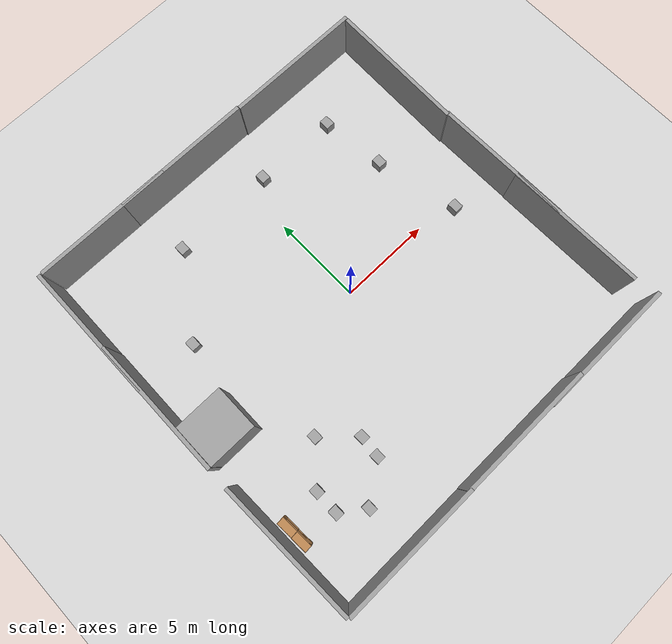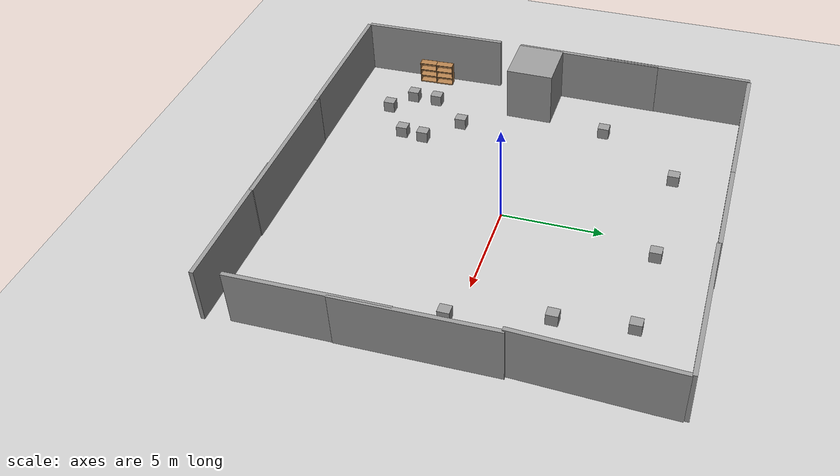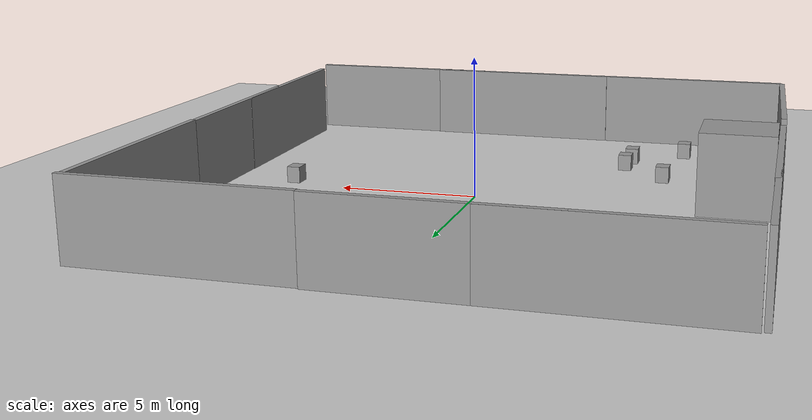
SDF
<sdf version="1.6">
 <world name="default">
  <light name="sun" type="directional">
   <pose>0 0 10 0 -0 0</pose>
   <diffuse>0.8 0.8 0.8 1</diffuse>
   <specular>0.2 0.2 0.2 1</specular>
   <attenuation>
    <range>1000</range>
    <constant>0.9</constant>
    <linear>0.01</linear>
    <quadratic>0.001</quadratic>
   </attenuation>
   <direction>-0.5 0.1 -0.9</direction>
  </light>
  <model name="ground_plane">
   <static>1</static>
   <link name="link">
    <collision name="collision">
     <geometry><plane><normal>0 0 1</normal><size>100 100</size></plane></geometry>
     <surface><friction><ode><mu>100</mu><mu2>50</mu2></ode></friction></surface>
    </collision>
    <visual name="visual">
     <cast_shadows>0</cast_shadows>
     <geometry><plane><normal>0 0 1</normal><size>100 100</size></plane></geometry>
     <material>
      <script><uri>file://media/materials/scripts/gazebo.material</uri><name>Gazebo/Grey</name></script>
     </material>
    </visual>
   </link>
  </model>
  <gravity>0 0 -9.8</gravity>
  <magnetic_field>6e-06 2.3e-05 -4.2e-05</magnetic_field>
  <atmosphere type="adiabatic"/>
  <physics name="default_physics" default="0" type="ode">
   <max_step_size>0.001</max_step_size>
   <real_time_factor>1</real_time_factor>
   <real_time_update_rate>1000</real_time_update_rate>
  </physics>
  <scene><ambient>0.4 0.4 0.4 1</ambient><background>0.7 0.7 0.7 1</background><shadows>1</shadows></scene>
  <spherical_coordinates>
   <surface_model>EARTH_WGS84</surface_model>
   <latitude_deg>0</latitude_deg>
   <longitude_deg>0</longitude_deg>
   <elevation>0</elevation>
   <heading_deg>0</heading_deg>
  </spherical_coordinates>
  <model name="bookshelf">
   <static>1</static>
   <link name="link">
    <inertial><mass>1</mass></inertial>
    <collision name="back">
     <pose>0 0.005 0.6 0 -0 0</pose>
     <geometry><box><size>0.9 0.01 1.2</size></box></geometry>
    </collision>
    <visual name="visual1">
     <pose>0 0.005 0.6 0 -0 0</pose>
     <geometry><box><size>0.9 0.01 1.2</size></box></geometry>
     <material>
      <script><uri>file://media/materials/scripts/gazebo.material</uri><name>Gazebo/Wood</name></script>
     </material>
    </visual>
    <collision name="left_side">
     <pose>0.45 -0.195 0.6 0 -0 0</pose>
     <geometry><box><size>0.02 0.4 1.2</size></box></geometry>
    </collision>
    <visual name="visual2">
     <pose>0.45 -0.195 0.6 0 -0 0</pose>
     <geometry><box><size>0.02 0.4 1.2</size></box></geometry>
     <material>
      <script><uri>file://media/materials/scripts/gazebo.material</uri><name>Gazebo/Wood</name></script>
     </material>
    </visual>
    <collision name="right_side">
     <pose>-0.45 -0.195 0.6 0 -0 0</pose>
     <geometry><box><size>0.02 0.4 1.2</size></box></geometry>
    </collision>
    <visual name="visual3">
     <pose>-0.45 -0.195 0.6 0 -0 0</pose>
     <geometry><box><size>0.02 0.4 1.2</size></box></geometry>
     <material>
      <script><uri>file://media/materials/scripts/gazebo.material</uri><name>Gazebo/Wood</name></script>
     </material>
    </visual>
    <collision name="bottom">
     <pose>0 -0.195 0.03 0 -0 0</pose>
     <geometry><box><size>0.88 0.4 0.06</size></box></geometry>
    </collision>
    <visual name="visual4">
     <pose>0 -0.195 0.03 0 -0 0</pose>
     <geometry><box><size>0.88 0.4 0.06</size></box></geometry>
     <material>
      <script><uri>file://media/materials/scripts/gazebo.material</uri><name>Gazebo/Wood</name></script>
     </material>
    </visual>
    <collision name="top">
     <pose>0 -0.195 1.19 0 -0 0</pose>
     <geometry><box><size>0.88 0.4 0.02</size></box></geometry>
    </collision>
    <visual name="visual5">
     <pose>0 -0.195 1.19 0 -0 0</pose>
     <geometry><box><size>0.88 0.4 0.02</size></box></geometry>
     <material>
      <script><uri>file://media/materials/scripts/gazebo.material</uri><name>Gazebo/Wood</name></script>
     </material>
    </visual>
    <collision name="low_shelf">
     <pose>0 -0.195 0.43 0 -0 0</pose>
     <geometry><box><size>0.88 0.4 0.02</size></box></geometry>
    </collision>
    <visual name="visual6">
     <pose>0 -0.195 0.43 0 -0 0</pose>
     <geometry><box><size>0.88 0.4 0.02</size></box></geometry>
     <material>
      <script><uri>file://media/materials/scripts/gazebo.material</uri><name>Gazebo/Wood</name></script>
     </material>
    </visual>
    <collision name="high_shelf">
     <pose>0 -0.195 0.8 0 -0 0</pose>
     <geometry><box><size>0.88 0.4 0.02</size></box></geometry>
    </collision>
    <visual name="visual7">
     <pose>0 -0.195 0.8 0 -0 0</pose>
     <geometry><box><size>0.88 0.4 0.02</size></box></geometry>
     <material>
      <script><uri>file://media/materials/scripts/gazebo.material</uri><name>Gazebo/Wood</name></script>
     </material>
    </visual>
   </link>
   <pose>-10.0437 -6.96425 0 0 -0 1.63062</pose>
  </model>
  <model name="bookshelf_clone">
   <static>1</static>
   <link name="link">
    <inertial><mass>1</mass></inertial>
    <collision name="back">
     <pose>0 0.005 0.6 0 -0 0</pose>
     <geometry><box><size>0.9 0.01 1.2</size></box></geometry>
    </collision>
    <visual name="visual1">
     <pose>0 0.005 0.6 0 -0 0</pose>
     <geometry><box><size>0.9 0.01 1.2</size></box></geometry>
     <material>
      <script><uri>file://media/materials/scripts/gazebo.material</uri><name>Gazebo/Wood</name></script>
     </material>
    </visual>
    <collision name="left_side">
     <pose>0.45 -0.195 0.6 0 -0 0</pose>
     <geometry><box><size>0.02 0.4 1.2</size></box></geometry>
    </collision>
    <visual name="visual2">
     <pose>0.45 -0.195 0.6 0 -0 0</pose>
     <geometry><box><size>0.02 0.4 1.2</size></box></geometry>
     <material>
      <script><uri>file://media/materials/scripts/gazebo.material</uri><name>Gazebo/Wood</name></script>
     </material>
    </visual>
    <collision name="right_side">
     <pose>-0.45 -0.195 0.6 0 -0 0</pose>
     <geometry><box><size>0.02 0.4 1.2</size></box></geometry>
    </collision>
    <visual name="visual3">
     <pose>-0.45 -0.195 0.6 0 -0 0</pose>
     <geometry><box><size>0.02 0.4 1.2</size></box></geometry>
     <material>
      <script><uri>file://media/materials/scripts/gazebo.material</uri><name>Gazebo/Wood</name></script>
     </material>
    </visual>
    <collision name="bottom">
     <pose>0 -0.195 0.03 0 -0 0</pose>
     <geometry><box><size>0.88 0.4 0.06</size></box></geometry>
    </collision>
    <visual name="visual4">
     <pose>0 -0.195 0.03 0 -0 0</pose>
     <geometry><box><size>0.88 0.4 0.06</size></box></geometry>
     <material>
      <script><uri>file://media/materials/scripts/gazebo.material</uri><name>Gazebo/Wood</name></script>
     </material>
    </visual>
    <collision name="top">
     <pose>0 -0.195 1.19 0 -0 0</pose>
     <geometry><box><size>0.88 0.4 0.02</size></box></geometry>
    </collision>
    <visual name="visual5">
     <pose>0 -0.195 1.19 0 -0 0</pose>
     <geometry><box><size>0.88 0.4 0.02</size></box></geometry>
     <material>
      <script><uri>file://media/materials/scripts/gazebo.material</uri><name>Gazebo/Wood</name></script>
     </material>
    </visual>
    <collision name="low_shelf">
     <pose>0 -0.195 0.43 0 -0 0</pose>
     <geometry><box><size>0.88 0.4 0.02</size></box></geometry>
    </collision>
    <visual name="visual6">
     <pose>0 -0.195 0.43 0 -0 0</pose>
     <geometry><box><size>0.88 0.4 0.02</size></box></geometry>
     <material>
      <script><uri>file://media/materials/scripts/gazebo.material</uri><name>Gazebo/Wood</name></script>
     </material>
    </visual>
    <collision name="high_shelf">
     <pose>0 -0.195 0.8 0 -0 0</pose>
     <geometry><box><size>0.88 0.4 0.02</size></box></geometry>
    </collision>
    <visual name="visual7">
     <pose>0 -0.195 0.8 0 -0 0</pose>
     <geometry><box><size>0.88 0.4 0.02</size></box></geometry>
     <material>
      <script><uri>file://media/materials/scripts/gazebo.material</uri><name>Gazebo/Wood</name></script>
     </material>
    </visual>
   </link>
   <pose>-10.0778 -6.06102 0 0 -0 1.63062</pose>
  </model>
  <model name="grey_wall">
   <static>1</static>
   <link name="link">
    <pose>0 0 1.4 0 -0 0</pose>
    <collision name="collision"><geometry><box><size>7.5 0.2 2.8</size></box></geometry></collision>
    <visual name="visual">
     <cast_shadows>0</cast_shadows>
     <geometry><box><size>7.5 0.2 2.8</size></box></geometry>
     <material>
      <script>
       <uri>model://grey_wall/materials/scripts</uri>
       <uri>model://grey_wall/materials/textures</uri>
       <name>vrc/grey_wall</name>
      </script>
     </material>
    </visual>
   </link>
   <pose>-6.52157 -10.5128 0 0 -0 0</pose>
  </model>
  <model name="grey_wall_clone">
   <static>1</static>
   <link name="link">
    <pose>0 0 1.4 0 -0 0</pose>
    <collision name="collision"><geometry><box><size>7.5 0.2 2.8</size></box></geometry></collision>
    <visual name="visual">
     <cast_shadows>0</cast_shadows>
     <geometry><box><size>7.5 0.2 2.8</size></box></geometry>
     <material>
      <script>
       <uri>model://grey_wall/materials/scripts</uri>
       <uri>model://grey_wall/materials/textures</uri>
       <name>vrc/grey_wall</name>
      </script>
     </material>
    </visual>
   </link>
   <pose>0.733429 -10.4946 0 0 -0 0</pose>
  </model>
  <model name="grey_wall_clone_0">
   <static>1</static>
   <link name="link">
    <pose>0 0 1.4 0 -0 0</pose>
    <collision name="collision"><geometry><box><size>7.5 0.2 2.8</size></box></geometry></collision>
    <visual name="visual">
     <cast_shadows>0</cast_shadows>
     <geometry><box><size>7.5 0.2 2.8</size></box></geometry>
     <material>
      <script>
       <uri>model://grey_wall/materials/scripts</uri>
       <uri>model://grey_wall/materials/textures</uri>
       <name>vrc/grey_wall</name>
      </script>
     </material>
    </visual>
   </link>
   <pose>6.21308 -10.5341 0 0 -0 0</pose>
  </model>
  <model name="grey_wall_clone_1">
   <static>1</static>
   <link name="link">
    <pose>0 0 1.4 0 -0 0</pose>
    <collision name="collision"><geometry><box><size>7.5 0.2 2.8</size></box></geometry></collision>
    <visual name="visual">
     <cast_shadows>0</cast_shadows>
     <geometry><box><size>7.5 0.2 2.8</size></box></geometry>
     <material>
      <script>
       <uri>model://grey_wall/materials/scripts</uri>
       <uri>model://grey_wall/materials/textures</uri>
       <name>vrc/grey_wall</name>
      </script>
     </material>
    </visual>
   </link>
   <pose>9.56355 -0.889535 0 0 0 -1.55835</pose>
  </model>
  <model name="grey_wall_clone_2">
   <static>1</static>
   <link name="link">
    <pose>0 0 1.4 0 -0 0</pose>
    <collision name="collision"><geometry><box><size>7.5 0.2 2.8</size></box></geometry></collision>
    <visual name="visual">
     <cast_shadows>0</cast_shadows>
     <geometry><box><size>7.5 0.2 2.8</size></box></geometry>
     <material>
      <script>
       <uri>model://grey_wall/materials/scripts</uri>
       <uri>model://grey_wall/materials/textures</uri>
       <name>vrc/grey_wall</name>
      </script>
     </material>
    </visual>
   </link>
   <pose>9.52341 6.44105 0.009453 0.000392 -0.015239 -1.59649</pose>
  </model>
  <model name="grey_wall_clone_3">
   <static>1</static>
   <link name="link">
    <pose>0 0 1.4 0 -0 0</pose>
    <collision name="collision"><geometry><box><size>7.5 0.2 2.8</size></box></geometry></collision>
    <visual name="visual">
     <cast_shadows>0</cast_shadows>
     <geometry><box><size>7.5 0.2 2.8</size></box></geometry>
     <material>
      <script>
       <uri>model://grey_wall/materials/scripts</uri>
       <uri>model://grey_wall/materials/textures</uri>
       <name>vrc/grey_wall</name>
      </script>
     </material>
    </visual>
   </link>
   <pose>5.93574 10.2978 0 0 -0 0</pose>
  </model>
  <model name="grey_wall_clone_4">
   <static>1</static>
   <link name="link">
    <pose>0 0 1.4 0 -0 0</pose>
    <collision name="collision"><geometry><box><size>7.5 0.2 2.8</size></box></geometry></collision>
    <visual name="visual">
     <cast_shadows>0</cast_shadows>
     <geometry><box><size>7.5 0.2 2.8</size></box></geometry>
     <material>
      <script>
       <uri>model://grey_wall/materials/scripts</uri>
       <uri>model://grey_wall/materials/textures</uri>
       <name>vrc/grey_wall</name>
      </script>
     </material>
    </visual>
   </link>
   <pose>-1.57699 10.3501 0 0 -0 0</pose>
  </model>
  <model name="grey_wall_clone_5">
   <static>1</static>
   <link name="link">
    <pose>0 0 1.4 0 -0 0</pose>
    <collision name="collision"><geometry><box><size>7.5 0.2 2.8</size></box></geometry></collision>
    <visual name="visual">
     <cast_shadows>0</cast_shadows>
     <geometry><box><size>7.5 0.2 2.8</size></box></geometry>
     <material>
      <script>
       <uri>model://grey_wall/materials/scripts</uri>
       <uri>model://grey_wall/materials/textures</uri>
       <name>vrc/grey_wall</name>
      </script>
     </material>
    </visual>
   </link>
   <pose>-6.52015 10.3522 0 0 -0 0</pose>
  </model>
  <model name="grey_wall_clone_6">
   <static>1</static>
   <link name="link">
    <pose>0 0 1.4 0 -0 0</pose>
    <collision name="collision"><geometry><box><size>7.5 0.2 2.8</size></box></geometry></collision>
    <visual name="visual">
     <cast_shadows>0</cast_shadows>
     <geometry><box><size>7.5 0.2 2.8</size></box></geometry>
     <material>
      <script>
       <uri>model://grey_wall/materials/scripts</uri>
       <uri>model://grey_wall/materials/textures</uri>
       <name>vrc/grey_wall</name>
      </script>
     </material>
    </visual>
   </link>
   <pose>-10.4689 1.86628 0 0 -0 1.5645</pose>
  </model>
  <model name="grey_wall_clone_7">
   <static>1</static>
   <link name="link">
    <pose>0 0 1.4 0 -0 0</pose>
    <collision name="collision"><geometry><box><size>7.5 0.2 2.8</size></box></geometry></collision>
    <visual name="visual">
     <cast_shadows>0</cast_shadows>
     <geometry><box><size>7.5 0.2 2.8</size></box></geometry>
     <material>
      <script>
       <uri>model://grey_wall/materials/scripts</uri>
       <uri>model://grey_wall/materials/textures</uri>
       <name>vrc/grey_wall</name>
      </script>
     </material>
    </visual>
   </link>
   <pose>-10.4182 -6.72312 0 0 -0 1.59451</pose>
  </model>
  <model name="grey_wall_clone_6_clone">
   <static>1</static>
   <link name="link">
    <pose>0 0 1.4 0 -0 0</pose>
    <collision name="collision"><geometry><box><size>7.5 0.2 2.8</size></box></geometry></collision>
    <visual name="visual">
     <cast_shadows>0</cast_shadows>
     <geometry><box><size>7.5 0.2 2.8</size></box></geometry>
     <material>
      <script>
       <uri>model://grey_wall/materials/scripts</uri>
       <uri>model://grey_wall/materials/textures</uri>
       <name>vrc/grey_wall</name>
      </script>
     </material>
    </visual>
   </link>
   <pose>-10.4529 6.63913 0 0 -0 1.5645</pose>
  </model>
  <model name="grey_wall_clone_1_clone">
   <static>1</static>
   <link name="link">
    <pose>0 0 1.4 0 -0 0</pose>
    <collision name="collision"><geometry><box><size>7.5 0.2 2.8</size></box></geometry></collision>
    <visual name="visual">
     <cast_shadows>0</cast_shadows>
     <geometry><box><size>7.5 0.2 2.8</size></box></geometry>
     <material>
      <script>
       <uri>model://grey_wall/materials/scripts</uri>
       <uri>model://grey_wall/materials/textures</uri>
       <name>vrc/grey_wall</name>
      </script>
     </material>
    </visual>
   </link>
   <pose>9.59792 -5.57468 0 0 0 -1.55835</pose>
  </model>
  <model name="unit_box">
   <pose>-4.71331 -6.69003 0.30039 0 -0 0</pose>
   <link name="link">
    <inertial>
     <mass>1</mass>
     <inertia>
      <ixx>0.166667</ixx>
      <ixy>0</ixy>
      <ixz>0</ixz>
      <iyy>0.166667</iyy>
      <iyz>0</iyz>
      <izz>0.166667</izz>
     </inertia>
    </inertial>
    <collision name="collision"><geometry><box><size>0.493863 0.57853 0.600781</size></box></geometry></collision>
    <visual name="visual">
     <geometry><box><size>0.493863 0.57853 0.600781</size></box></geometry>
     <material>
      <script><name>Gazebo/Grey</name><uri>file://media/materials/scripts/gazebo.material</uri></script>
     </material>
    </visual>
   </link>
  </model>
  <model name="unit_box_clone">
   <pose>-4.5988 -5.53107 0.30039 0 -0 0</pose>
   <link name="link">
    <inertial>
     <mass>1</mass>
     <inertia>
      <ixx>0.166667</ixx>
      <ixy>0</ixy>
      <ixz>0</ixz>
      <iyy>0.166667</iyy>
      <iyz>0</iyz>
      <izz>0.166667</izz>
     </inertia>
    </inertial>
    <collision name="collision"><geometry><box><size>0.493863 0.57853 0.600781</size></box></geometry></collision>
    <visual name="visual">
     <geometry><box><size>0.493863 0.57853 0.600781</size></box></geometry>
     <material>
      <script><name>Gazebo/Grey</name><uri>file://media/materials/scripts/gazebo.material</uri></script>
     </material>
    </visual>
   </link>
  </model>
  <model name="unit_box_clone_0">
   <pose>-6.21944 -3.95644 0.30039 0 -0 0</pose>
   <link name="link">
    <inertial>
     <mass>1</mass>
     <inertia>
      <ixx>0.166667</ixx>
      <ixy>0</ixy>
      <ixz>0</ixz>
      <iyy>0.166667</iyy>
      <iyz>0</iyz>
      <izz>0.166667</izz>
     </inertia>
    </inertial>
    <collision name="collision"><geometry><box><size>0.493863 0.57853 0.600781</size></box></geometry></collision>
    <visual name="visual">
     <geometry><box><size>0.493863 0.57853 0.600781</size></box></geometry>
     <material>
      <script><name>Gazebo/Grey</name><uri>file://media/materials/scripts/gazebo.material</uri></script>
     </material>
    </visual>
   </link>
  </model>
  <model name="unit_box_clone_1">
   <pose>-6.63356 -8.10303 0.30039 0 -0 0</pose>
   <link name="link">
    <inertial>
     <mass>1</mass>
     <inertia>
      <ixx>0.166667</ixx>
      <ixy>0</ixy>
      <ixz>0</ixz>
      <iyy>0.166667</iyy>
      <iyz>0</iyz>
      <izz>0.166667</izz>
     </inertia>
    </inertial>
    <collision name="collision"><geometry><box><size>0.493863 0.57853 0.600781</size></box></geometry></collision>
    <visual name="visual">
     <geometry><box><size>0.493863 0.57853 0.600781</size></box></geometry>
     <material>
      <script><name>Gazebo/Grey</name><uri>file://media/materials/scripts/gazebo.material</uri></script>
     </material>
    </visual>
   </link>
  </model>
  <model name="unit_box_clone_2">
   <pose>-7.8735 -5.85648 0.30039 0 -0 0</pose>
   <link name="link">
    <inertial>
     <mass>1</mass>
     <inertia>
      <ixx>0.166667</ixx>
      <ixy>0</ixy>
      <ixz>0</ixz>
      <iyy>0.166667</iyy>
      <iyz>0</iyz>
      <izz>0.166667</izz>
     </inertia>
    </inertial>
    <collision name="collision"><geometry><box><size>0.493863 0.57853 0.600781</size></box></geometry></collision>
    <visual name="visual">
     <geometry><box><size>0.493863 0.57853 0.600781</size></box></geometry>
     <material>
      <script><name>Gazebo/Grey</name><uri>file://media/materials/scripts/gazebo.material</uri></script>
     </material>
    </visual>
   </link>
  </model>
  <model name="unit_box_clone_3">
   <pose>-7.88982 -7.15369 0.30039 0 -0 0</pose>
   <link name="link">
    <inertial>
     <mass>1</mass>
     <inertia>
      <ixx>0.166667</ixx>
      <ixy>0</ixy>
      <ixz>0</ixz>
      <iyy>0.166667</iyy>
      <iyz>0</iyz>
      <izz>0.166667</izz>
     </inertia>
    </inertial>
    <collision name="collision"><geometry><box><size>0.493863 0.57853 0.600781</size></box></geometry></collision>
    <visual name="visual">
     <geometry><box><size>0.493863 0.57853 0.600781</size></box></geometry>
     <material>
      <script><name>Gazebo/Grey</name><uri>file://media/materials/scripts/gazebo.material</uri></script>
     </material>
    </visual>
   </link>
  </model>
  <model name="unit_box_clone_4">
   <pose>7.07836 -0.509653 0.30039 0 -0 0</pose>
   <link name="link">
    <inertial>
     <mass>1</mass>
     <inertia>
      <ixx>0.166667</ixx>
      <ixy>0</ixy>
      <ixz>0</ixz>
      <iyy>0.166667</iyy>
      <iyz>0</iyz>
      <izz>0.166667</izz>
     </inertia>
    </inertial>
    <collision name="collision"><geometry><box><size>0.493863 0.57853 0.600781</size></box></geometry></collision>
    <visual name="visual">
     <geometry><box><size>0.493863 0.57853 0.600781</size></box></geometry>
     <material>
      <script><name>Gazebo/Grey</name><uri>file://media/materials/scripts/gazebo.material</uri></script>
     </material>
    </visual>
   </link>
  </model>
  <model name="unit_box_clone_5">
   <pose>6 4 0.30039 0 -0 0</pose>
   <link name="link">
    <inertial>
     <mass>1</mass>
     <inertia>
      <ixx>0.166667</ixx>
      <ixy>0</ixy>
      <ixz>0</ixz>
      <iyy>0.166667</iyy>
      <iyz>0</iyz>
      <izz>0.166667</izz>
     </inertia>
    </inertial>
    <collision name="collision"><geometry><box><size>0.493863 0.57853 0.600781</size></box></geometry></collision>
    <visual name="visual">
     <geometry><box><size>0.493863 0.57853 0.600781</size></box></geometry>
     <material>
      <script><name>Gazebo/Grey</name><uri>file://media/materials/scripts/gazebo.material</uri></script>
     </material>
    </visual>
   </link>
  </model>
  <model name="unit_box_clone_6">
   <pose>5.5544 7.53611 0.30039 0 -0 0</pose>
   <link name="link">
    <inertial>
     <mass>1</mass>
     <inertia>
      <ixx>0.166667</ixx>
      <ixy>0</ixy>
      <ixz>0</ixz>
      <iyy>0.166667</iyy>
      <iyz>0</iyz>
      <izz>0.166667</izz>
     </inertia>
    </inertial>
    <collision name="collision"><geometry><box><size>0.493863 0.57853 0.600781</size></box></geometry></collision>
    <visual name="visual">
     <geometry><box><size>0.493863 0.57853 0.600781</size></box></geometry>
     <material>
      <script><name>Gazebo/Grey</name><uri>file://media/materials/scripts/gazebo.material</uri></script>
     </material>
    </visual>
   </link>
  </model>
  <model name="unit_box_clone_7">
   <pose>0.999954 7.62286 0.30039 0 -0 0</pose>
   <link name="link">
    <inertial>
     <mass>1</mass>
     <inertia>
      <ixx>0.166667</ixx>
      <ixy>0</ixy>
      <ixz>0</ixz>
      <iyy>0.166667</iyy>
      <iyz>0</iyz>
      <izz>0.166667</izz>
     </inertia>
    </inertial>
    <collision name="collision"><geometry><box><size>0.493863 0.57853 0.600781</size></box></geometry></collision>
    <visual name="visual">
     <geometry><box><size>0.493863 0.57853 0.600781</size></box></geometry>
     <material>
      <script><name>Gazebo/Grey</name><uri>file://media/materials/scripts/gazebo.material</uri></script>
     </material>
    </visual>
   </link>
  </model>
  <model name="unit_box_clone_8">
   <pose>-4.59373 7.57869 0.30039 0 -0 0</pose>
   <link name="link">
    <inertial>
     <mass>1</mass>
     <inertia>
      <ixx>0.166667</ixx>
      <ixy>0</ixy>
      <ixz>0</ixz>
      <iyy>0.166667</iyy>
      <iyz>0</iyz>
      <izz>0.166667</izz>
     </inertia>
    </inertial>
    <collision name="collision"><geometry><box><size>0.493863 0.57853 0.600781</size></box></geometry></collision>
    <visual name="visual">
     <geometry><box><size>0.493863 0.57853 0.600781</size></box></geometry>
     <material>
      <script><name>Gazebo/Grey</name><uri>file://media/materials/scripts/gazebo.material</uri></script>
     </material>
    </visual>
   </link>
  </model>
  <model name="unit_box_clone_9">
   <pose>-7.4507 3.47322 0.30039 0 0 -0.000612</pose>
   <link name="link">
    <inertial>
     <mass>1</mass>
     <inertia>
      <ixx>0.166667</ixx>
      <ixy>0</ixy>
      <ixz>0</ixz>
      <iyy>0.166667</iyy>
      <iyz>0</iyz>
      <izz>0.166667</izz>
     </inertia>
    </inertial>
    <collision name="collision"><geometry><box><size>0.493863 0.57853 0.600781</size></box></geometry></collision>
    <visual name="visual">
     <geometry><box><size>0.493863 0.57853 0.600781</size></box></geometry>
     <material>
      <script><name>Gazebo/Grey</name><uri>file://media/materials/scripts/gazebo.material</uri></script>
     </material>
    </visual>
   </link>
  </model>
  <model name="unit_box_0">
   <pose>-9.08359 -0.691488 1.43689 -3e-06 -0 -0.002707</pose>
   <link name="link">
    <inertial>
     <mass>1</mass>
     <inertia>
      <ixx>0.166667</ixx>
      <ixy>0</ixy>
      <ixz>0</ixz>
      <iyy>0.166667</iyy>
      <iyz>0</iyz>
      <izz>0.166667</izz>
     </inertia>
    </inertial>
    <collision name="collision"><geometry><box><size>2.5671 2.38889 2.87379</size></box></geometry></collision>
    <visual name="visual">
     <geometry><box><size>2.5671 2.38889 2.87379</size></box></geometry>
     <material>
      <script><name>Gazebo/Grey</name><uri>file://media/materials/scripts/gazebo.material</uri></script>
     </material>
    </visual>
   </link>
  </model>
 </world>
</sdf>
